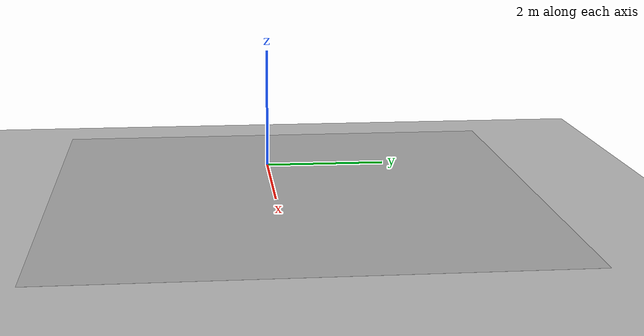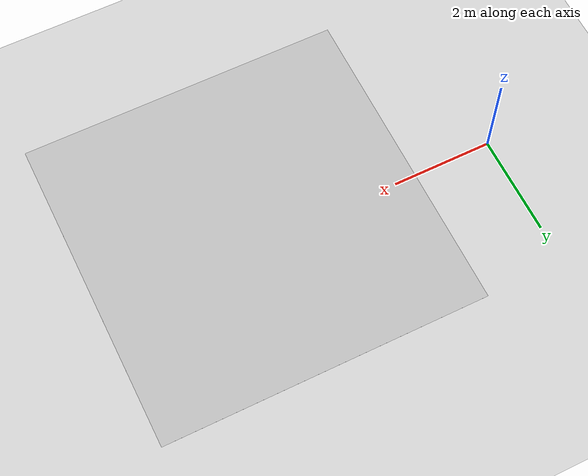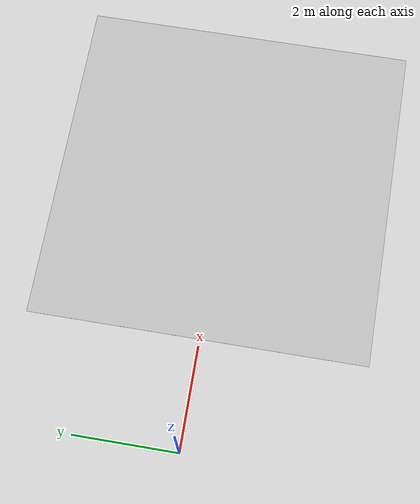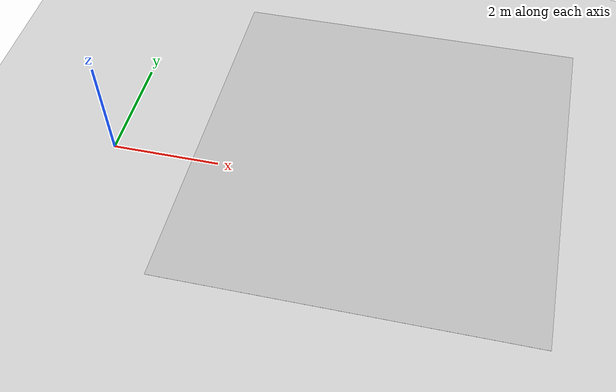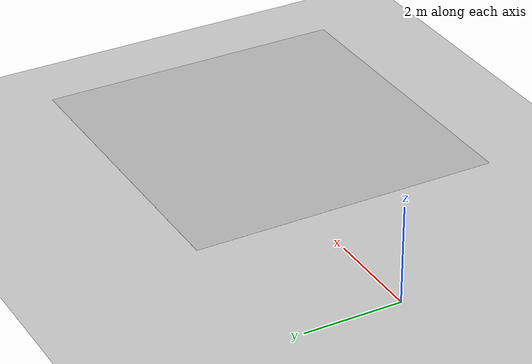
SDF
<?xml version="1.0" ?>
<sdf version="1.4">
  <world name="default">
    <spherical_coordinates>
      <surface_model>EARTH_WGS84</surface_model>
      <latitude_deg>47.3667</latitude_deg>
      <longitude_deg>8.5500</longitude_deg>
      <elevation>500.0</elevation>
      <heading_deg>0</heading_deg>
    </spherical_coordinates>

    <!-- A global light source -->
    <include>
      <uri>model://sun</uri>
    </include>
    <!-- A ground plane -->
    <include>
      <uri>model://ground_plane</uri>
    </include>
    <!-- AR marker 0 -->
    <include>
      <uri>model://marker0_50cm_massless</uri>
      <pose>5 0 1 0 0 0</pose>
    </include>
  </world>
</sdf>

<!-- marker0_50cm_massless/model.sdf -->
<sdf version='1.4'>
  <model name='marker0_50cm_massless'>
    <static>1</static>
    <link name="marker0">
      <gravity>false</gravity>
      <visual name="visual">
        <geometry>
          <box>
            <size>6.2 6.2 0.001</size>
          </box>
        </geometry>
        <material>
          <script>
      <uri>model://marker0_50cm_massless/materials/scripts</uri>
      <uri>model://marker0_50cm_massless/materials/textures</uri>
            <name>Aruco/marker0_50cm</name>
          </script>
        </material>
      </visual>
      <collision name="collision">
        <geometry>
          <box>
            <size>6.2 6.2 0.02</size>
          </box>
        </geometry>
      </collision>
    </link>
  </model>
</sdf>
